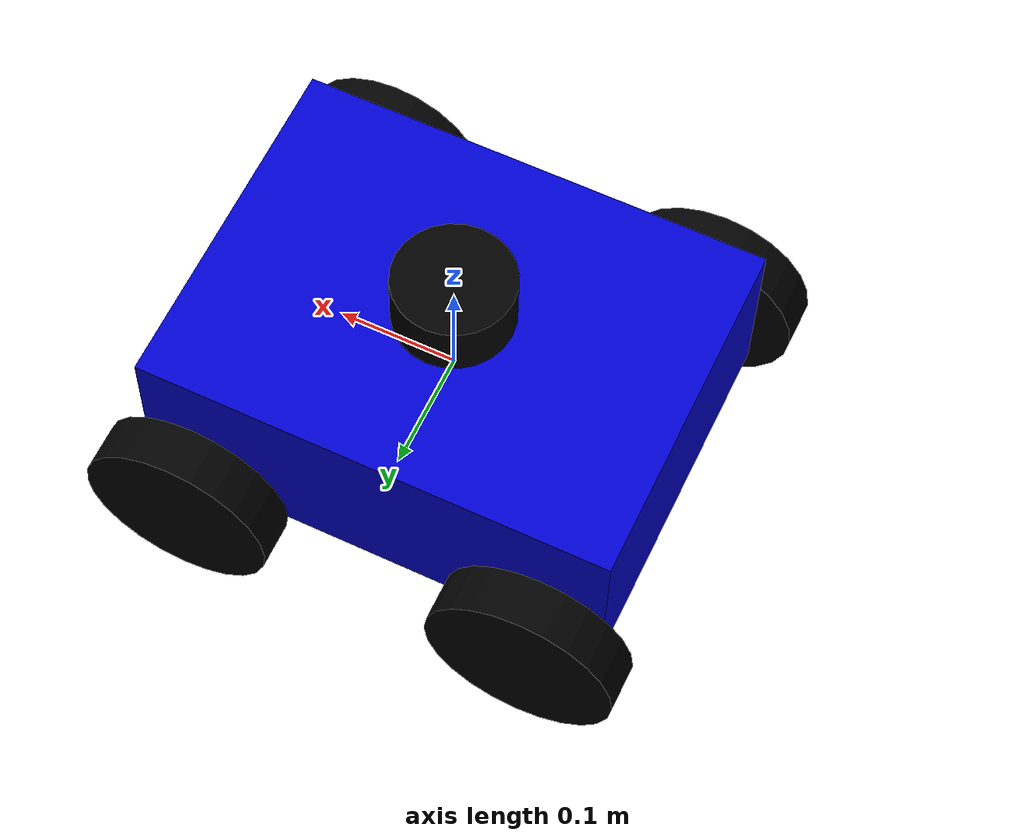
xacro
<?xml version="1.0"?>
<robot xmlns:xacro="http://www.ros.org/wiki/xacro" name="outdoor_bot">

  <xacro:property name="M_PI" value="3.1415926535897931" />

  <!-- Base Link —— 底盘 -->
  <link name="body">
    <visual>
      <geometry><box size="0.4 0.3 0.15"/></geometry>
      <material name="blue"><color rgba="0 0 0.8 1"/></material>
    </visual>
    <collision>
      <geometry><box size="0.4 0.3 0.15"/></geometry>
    </collision>
    <inertial>
      <mass value="10.0"/>
      <inertia ixx="0.09" ixy="0.0" ixz="0.0" iyy="0.15" iyz="0.0" izz="0.2"/>
    </inertial>
  </link>

  <!-- 4WD 轮子定义与关节 (4x Wheels & Continuous Joints)             -->

  <xacro:macro name="wheel" params="prefix x_reflect y_reflect">
    <link name="${prefix}_wheel">
      <visual>
        <origin xyz="0 0 0" rpy="${M_PI/2} 0 0"/>
        <geometry><cylinder radius="0.08" length="0.04"/></geometry>
        <material name="black"><color rgba="0 0 0 1"/></material>
      </visual>
      <collision>
        <origin xyz="0 0 0" rpy="${M_PI/2} 0 0"/>
        <geometry><cylinder radius="0.08" length="0.04"/></geometry>
      </collision>
      <inertial>
        <mass value="0.5"/>
        <inertia ixx="0.001" ixy="0.0" ixz="0.0" iyy="0.001" iyz="0.0" izz="0.001"/>
      </inertial>
    </link>

    <joint name="${prefix}_wheel_joint" type="continuous">
      <parent link="body"/>
      <child link="${prefix}_wheel"/>
      <!-- 轮子质心略低于底盘，使其能触地 -->
      <origin xyz="${x_reflect*0.15} ${y_reflect*0.18} -0.05" rpy="0 0 0"/>
      <axis xyz="0 1 0"/>
    </joint>
  </xacro:macro>

  <xacro:wheel prefix="left_front" x_reflect="1" y_reflect="1" />
  <xacro:wheel prefix="right_front" x_reflect="1" y_reflect="-1" />
  <xacro:wheel prefix="left_rear" x_reflect="-1" y_reflect="1" />
  <xacro:wheel prefix="right_rear" x_reflect="-1" y_reflect="-1" />

  <!-- 传感器 Link 保持不变                                          -->
  <link name="lidar_link">
    <visual>
      <origin xyz="0 0 0" rpy="0 0 0"/>
      <geometry><cylinder radius="0.05" length="0.05"/></geometry>
      <material name="black"><color rgba="0 0 0 1"/></material>
    </visual>
    <collision>
      <origin xyz="0 0 0" rpy="0 0 0"/>
      <geometry><cylinder radius="0.05" length="0.05"/></geometry>
    </collision>
    <inertial>
      <mass value="0.1"/>
      <origin xyz="0 0 0" rpy="0 0 0"/>
      <inertia ixx="0.0001" ixy="0.0" ixz="0.0" iyy="0.0001" iyz="0.0" izz="0.0001"/>
    </inertial>
  </link>

  <joint name="lidar_joint" type="fixed">
    <parent link="body"/>
    <child link="lidar_link"/>
    <origin xyz="0 0 0.1" rpy="0 0 0"/>
  </joint>

  <link name="imu_link">
    <inertial>
      <mass value="0.01"/>
      <origin xyz="0 0 0" rpy="0 0 0"/>
      <inertia ixx="0.00001" ixy="0.0" ixz="0.0" iyy="0.00001" iyz="0.0" izz="0.00001"/>
    </inertial>
  </link>

  <joint name="imu_joint" type="fixed">
    <parent link="body"/>
    <child link="imu_link"/>
    <origin xyz="0 0 0.1" rpy="0 0 0"/>
  </joint>

  <!-- Ignition 传感器插件                                            -->
  <gazebo reference="lidar_link">
    <sensor type="gpu_lidar" name="lidar_sensor">
      <pose>0 0 0.03 0 0 0</pose>
      <topic>/lidar/points</topic>
      <ignition_frame_id>lidar_link</ignition_frame_id>
      <update_rate>10</update_rate>
      <lidar>
        <scan>
          <horizontal>
            <samples>900</samples>
            <resolution>1</resolution>
            <min_angle>-${M_PI}</min_angle>
            <max_angle>${M_PI}</max_angle>
          </horizontal>
          <vertical>
            <samples>32</samples>
            <resolution>1</resolution>
            <min_angle>-0.122173</min_angle>
            <max_angle>0.907571</max_angle>
          </vertical>
        </scan>
        <range>
          <min>0.1</min>
          <max>40.0</max>
          <resolution>0.001</resolution>
        </range>
      </lidar>
      <always_on>1</always_on>
      <visualize>false</visualize>
    </sensor>
  </gazebo>

  <gazebo reference="imu_link">
    <sensor type="imu" name="imu_sensor">
      <topic>/imu/data</topic>
      <ignition_frame_id>imu_link</ignition_frame_id>
      <update_rate>200</update_rate>
      <always_on>1</always_on>
      <visualize>true</visualize>
      <imu>
        <angular_velocity>
          <x><noise type="gaussian"><mean>0.0</mean><stddev>2e-4</stddev></noise></x>
          <y><noise type="gaussian"><mean>0.0</mean><stddev>2e-4</stddev></noise></y>
          <z><noise type="gaussian"><mean>0.0</mean><stddev>2e-4</stddev></noise></z>
        </angular_velocity>
        <linear_acceleration>
          <x><noise type="gaussian"><mean>0.0</mean><stddev>1.7e-2</stddev></noise></x>
          <y><noise type="gaussian"><mean>0.0</mean><stddev>1.7e-2</stddev></noise></y>
          <z><noise type="gaussian"><mean>0.0</mean><stddev>1.7e-2</stddev></noise></z>
        </linear_acceleration>
      </imu>
    </sensor>
  </gazebo>

  <!-- ★ 核心修复：Ignition 标准多关节差速驱动系统 (4WD 四驱滑移转向)   -->
  <gazebo>
    <plugin
      filename="libignition-gazebo-diff-drive-system.so"
      name="ignition::gazebo::systems::DiffDrive">
      <!-- 绑定左侧前后两个轮子的关节 -->
      <left_joint>left_front_wheel_joint</left_joint>
      <left_joint>left_rear_wheel_joint</left_joint>
      <!-- 绑定右侧前后两个轮子的关节 -->
      <right_joint>right_front_wheel_joint</right_joint>
      <right_joint>right_rear_wheel_joint</right_joint>

      <num_wheel_pairs>2</num_wheel_pairs>      <!-- 四驱 → 2 对轮子 -->
      <wheel_separation>0.58</wheel_separation> <!-- 轮距 (增大以修正自转里程计误差) -->
      <wheel_radius>0.08</wheel_radius>        <!-- 轮子半径 -->
      <odom_publish_frequency>20</odom_publish_frequency> <!-- 里程计发布频率 -->

      <!-- 速度命令与里程计话题 -->
      <topic>/model/outdoor_bot/cmd_vel</topic>
      <odom_topic>/odom</odom_topic>

      <!-- ★ TF 发布配置：让 Ignition 的 DiffDrive 发布 odom → body TF -->
      <tf_topic>/tf</tf_topic>
      <frame_id>odom</frame_id>
      <child_frame_id>body</child_frame_id>
      <!-- 强制每次里程计更新时同步刷新 TF，避免扫描反向偏转 -->
      <update_odom_to_tf>false</update_odom_to_tf>
    </plugin>
  </gazebo>

  <!-- ★ 修复：关节状态发布插件（让 RViz2 能渲染车轮转动）              -->
  <gazebo>
    <plugin
      filename="libignition-gazebo-joint-state-publisher-system.so"
      name="ignition::gazebo::systems::JointStatePublisher">
      <update_rate>30</update_rate>
      <joint_name>left_front_wheel_joint</joint_name>
      <joint_name>left_rear_wheel_joint</joint_name>
      <joint_name>right_front_wheel_joint</joint_name>
      <joint_name>right_rear_wheel_joint</joint_name>
    </plugin>
  </gazebo>

</robot>
